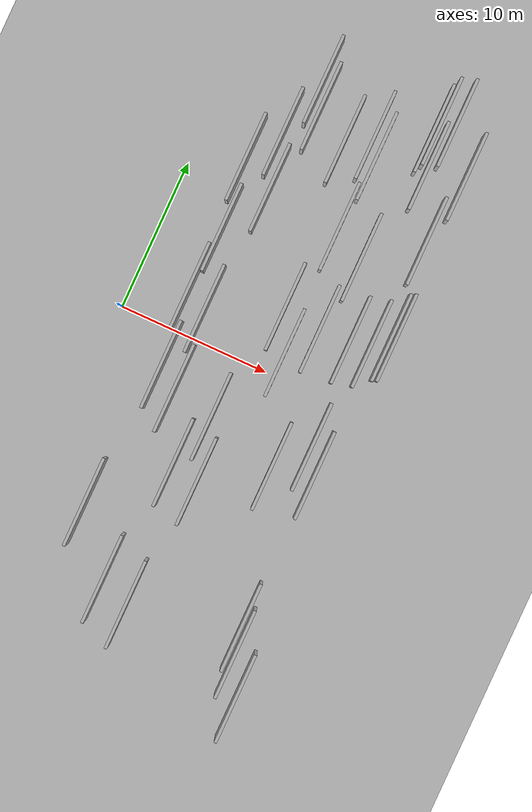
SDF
<?xml version="1.0" encoding="utf-8"?>

<sdf version="1.6">

   <world name="default">

      <gui fullscreen="0">

         <camera name="user_camera">

            <pose>-15 0 4.57585 0 0 0</pose>

            <view_controller>orbit</view_controller>

         </camera>

      </gui>

      <scene>

         <sky>

           <clouds>

             <speed>12</speed>

           </clouds>

         </sky>

         <ambient>0.4 0.4 0.4 1</ambient>

         <background>0.7 0.7 0.7 1</background>

         <shadows>1</shadows>

      </scene>

      <gravity>0 0 -9.8066</gravity>

      <magnetic_field>6e-06 2.3e-05 -4.2e-05</magnetic_field>

      <physics default="0" name="default_physics" type="ode">

         <ode>

            <solver>

               <type>quick</type>

               <iters>10</iters>

               <sor>1.0</sor>

               <use_dynamic_moi_rescaling>0</use_dynamic_moi_rescaling>

            </solver>

            <constraints>

               <cfm>0</cfm>

               <erp>0.2</erp>

               <contact_max_correcting_vel>100</contact_max_correcting_vel>

               <contact_surface_layer>0.001</contact_surface_layer>

            </constraints>

         </ode>

         <max_step_size>0.004</max_step_size>

         <real_time_factor>1</real_time_factor>

         <real_time_update_rate>250</real_time_update_rate>

      </physics>

      <light name="sun" type="directional">

         <cast_shadows>1</cast_shadows>

         <pose>0 0 10 0 0 0</pose>

         <diffuse>0.8 0.8 0.8 1</diffuse>

         <specular>0.2 0.2 0.2 1</specular>

         <attenuation>

            <range>1000</range>

            <constant>0.9</constant>

            <linear>0.01</linear>

            <quadratic>0.001</quadratic>

         </attenuation>

         <direction>-0.5 0.1 -0.9</direction>

      </light>

      <include>

         <name>ground_plane_1</name>

         <uri>model://HANNAS_ground_plane</uri>

         <pose>0 0 0  0 0 0</pose>

      </include>

      <include>

         <name>ground_plane_2</name>

         <uri>model://HANNAS_ground_plane</uri>

         <pose>100 0 0  0 0 0</pose>

      </include>

      <model name="HANNAS_wall_1">

         <static>1</static>

         <pose frame="">12.8347 -5.1475 0.0 0.000000 0.000000 1.570796</pose>

         <link name="link">

            <pose frame="">0 0 3.00 0 0 0</pose>

            <collision name="collision">

               <geometry>

                  <box>

                     <size>6.00 0.2 6.00</size>

                  </box>

               </geometry>

               <max_contacts>10</max_contacts>

               <surface>

                  <contact>

                     <ode/>

                  </contact>

                  <bounce/>

                  <friction>

                     <torsional>

                        <ode/>

                     </torsional>

                     <ode/>

                  </friction>

               </surface>

            </collision>

            <visual name="visual">

               <cast_shadows>0</cast_shadows>

               <geometry>

                  <box>

                     <size>6.00 0.2 6.00</size>

                  </box>

               </geometry>

               <material>

                  <script>

                     <uri>model://HANNAS_wall/materials/scripts</uri>

                     <uri>model://HANNAS_wall/materials/textures</uri>

                     <name>vrc/HANNAS_wall</name>

                  </script>

               </material>

            </visual>

            <self_collide>0</self_collide>

            <enable_wind>0</enable_wind>

            <kinematic>0</kinematic>

         </link>

      </model>

      <model name="HANNAS_wall_2">

         <static>1</static>

         <pose frame="">3.8975 -2.2619 0.0 0.000000 0.000000 1.570796</pose>

         <link name="link">

            <pose frame="">0 0 3.00 0 0 0</pose>

            <collision name="collision">

               <geometry>

                  <box>

                     <size>6.00 0.2 6.00</size>

                  </box>

               </geometry>

               <max_contacts>10</max_contacts>

               <surface>

                  <contact>

                     <ode/>

                  </contact>

                  <bounce/>

                  <friction>

                     <torsional>

                        <ode/>

                     </torsional>

                     <ode/>

                  </friction>

               </surface>

            </collision>

            <visual name="visual">

               <cast_shadows>0</cast_shadows>

               <geometry>

                  <box>

                     <size>6.00 0.2 6.00</size>

                  </box>

               </geometry>

               <material>

                  <script>

                     <uri>model://HANNAS_wall/materials/scripts</uri>

                     <uri>model://HANNAS_wall/materials/textures</uri>

                     <name>vrc/HANNAS_wall</name>

                  </script>

               </material>

            </visual>

            <self_collide>0</self_collide>

            <enable_wind>0</enable_wind>

            <kinematic>0</kinematic>

         </link>

      </model>

      <model name="HANNAS_wall_3">

         <static>1</static>

         <pose frame="">10.6018 1.6065 0.0 0.000000 0.000000 1.570796</pose>

         <link name="link">

            <pose frame="">0 0 3.00 0 0 0</pose>

            <collision name="collision">

               <geometry>

                  <box>

                     <size>6.00 0.2 6.00</size>

                  </box>

               </geometry>

               <max_contacts>10</max_contacts>

               <surface>

                  <contact>

                     <ode/>

                  </contact>

                  <bounce/>

                  <friction>

                     <torsional>

                        <ode/>

                     </torsional>

                     <ode/>

                  </friction>

               </surface>

            </collision>

            <visual name="visual">

               <cast_shadows>0</cast_shadows>

               <geometry>

                  <box>

                     <size>6.00 0.2 6.00</size>

                  </box>

               </geometry>

               <material>

                  <script>

                     <uri>model://HANNAS_wall/materials/scripts</uri>

                     <uri>model://HANNAS_wall/materials/textures</uri>

                     <name>vrc/HANNAS_wall</name>

                  </script>

               </material>

            </visual>

            <self_collide>0</self_collide>

            <enable_wind>0</enable_wind>

            <kinematic>0</kinematic>

         </link>

      </model>

      <model name="HANNAS_wall_4">

         <static>1</static>

         <pose frame="">14.0080 4.0564 0.0 0.000000 0.000000 1.570796</pose>

         <link name="link">

            <pose frame="">0 0 3.00 0 0 0</pose>

            <collision name="collision">

               <geometry>

                  <box>

                     <size>6.00 0.2 6.00</size>

                  </box>

               </geometry>

               <max_contacts>10</max_contacts>

               <surface>

                  <contact>

                     <ode/>

                  </contact>

                  <bounce/>

                  <friction>

                     <torsional>

                        <ode/>

                     </torsional>

                     <ode/>

                  </friction>

               </surface>

            </collision>

            <visual name="visual">

               <cast_shadows>0</cast_shadows>

               <geometry>

                  <box>

                     <size>6.00 0.2 6.00</size>

                  </box>

               </geometry>

               <material>

                  <script>

                     <uri>model://HANNAS_wall/materials/scripts</uri>

                     <uri>model://HANNAS_wall/materials/textures</uri>

                     <name>vrc/HANNAS_wall</name>

                  </script>

               </material>

            </visual>

            <self_collide>0</self_collide>

            <enable_wind>0</enable_wind>

            <kinematic>0</kinematic>

         </link>

      </model>

      <model name="HANNAS_wall_5">

         <static>1</static>

         <pose frame="">16.2582 5.2487 0.0 0.000000 0.000000 1.570796</pose>

         <link name="link">

            <pose frame="">0 0 3.00 0 0 0</pose>

            <collision name="collision">

               <geometry>

                  <box>

                     <size>6.00 0.2 6.00</size>

                  </box>

               </geometry>

               <max_contacts>10</max_contacts>

               <surface>

                  <contact>

                     <ode/>

                  </contact>

                  <bounce/>

                  <friction>

                     <torsional>

                        <ode/>

                     </torsional>

                     <ode/>

                  </friction>

               </surface>

            </collision>

            <visual name="visual">

               <cast_shadows>0</cast_shadows>

               <geometry>

                  <box>

                     <size>6.00 0.2 6.00</size>

                  </box>

               </geometry>

               <material>

                  <script>

                     <uri>model://HANNAS_wall/materials/scripts</uri>

                     <uri>model://HANNAS_wall/materials/textures</uri>

                     <name>vrc/HANNAS_wall</name>

                  </script>

               </material>

            </visual>

            <self_collide>0</self_collide>

            <enable_wind>0</enable_wind>

            <kinematic>0</kinematic>

         </link>

      </model>

      <model name="HANNAS_wall_6">

         <static>1</static>

         <pose frame="">15.3037 -15.0925 0.0 0.000000 0.000000 1.570796</pose>

         <link name="link">

            <pose frame="">0 0 3.00 0 0 0</pose>

            <collision name="collision">

               <geometry>

                  <box>

                     <size>6.00 0.2 6.00</size>

                  </box>

               </geometry>

               <max_contacts>10</max_contacts>

               <surface>

                  <contact>

                     <ode/>

                  </contact>

                  <bounce/>

                  <friction>

                     <torsional>

                        <ode/>

                     </torsional>

                     <ode/>

                  </friction>

               </surface>

            </collision>

            <visual name="visual">

               <cast_shadows>0</cast_shadows>

               <geometry>

                  <box>

                     <size>6.00 0.2 6.00</size>

                  </box>

               </geometry>

               <material>

                  <script>

                     <uri>model://HANNAS_wall/materials/scripts</uri>

                     <uri>model://HANNAS_wall/materials/textures</uri>

                     <name>vrc/HANNAS_wall</name>

                  </script>

               </material>

            </visual>

            <self_collide>0</self_collide>

            <enable_wind>0</enable_wind>

            <kinematic>0</kinematic>

         </link>

      </model>

      <model name="HANNAS_wall_7">

         <static>1</static>

         <pose frame="">14.3897 19.1042 0.0 0.000000 0.000000 1.570796</pose>

         <link name="link">

            <pose frame="">0 0 3.00 0 0 0</pose>

            <collision name="collision">

               <geometry>

                  <box>

                     <size>6.00 0.2 6.00</size>

                  </box>

               </geometry>

               <max_contacts>10</max_contacts>

               <surface>

                  <contact>

                     <ode/>

                  </contact>

                  <bounce/>

                  <friction>

                     <torsional>

                        <ode/>

                     </torsional>

                     <ode/>

                  </friction>

               </surface>

            </collision>

            <visual name="visual">

               <cast_shadows>0</cast_shadows>

               <geometry>

                  <box>

                     <size>6.00 0.2 6.00</size>

                  </box>

               </geometry>

               <material>

                  <script>

                     <uri>model://HANNAS_wall/materials/scripts</uri>

                     <uri>model://HANNAS_wall/materials/textures</uri>

                     <name>vrc/HANNAS_wall</name>

                  </script>

               </material>

            </visual>

            <self_collide>0</self_collide>

            <enable_wind>0</enable_wind>

            <kinematic>0</kinematic>

         </link>

      </model>

      <model name="HANNAS_wall_8">

         <static>1</static>

         <pose frame="">6.2374 16.5095 0.0 0.000000 0.000000 1.570796</pose>

         <link name="link">

            <pose frame="">0 0 3.00 0 0 0</pose>

            <collision name="collision">

               <geometry>

                  <box>

                     <size>6.00 0.2 6.00</size>

                  </box>

               </geometry>

               <max_contacts>10</max_contacts>

               <surface>

                  <contact>

                     <ode/>

                  </contact>

                  <bounce/>

                  <friction>

                     <torsional>

                        <ode/>

                     </torsional>

                     <ode/>

                  </friction>

               </surface>

            </collision>

            <visual name="visual">

               <cast_shadows>0</cast_shadows>

               <geometry>

                  <box>

                     <size>6.00 0.2 6.00</size>

                  </box>

               </geometry>

               <material>

                  <script>

                     <uri>model://HANNAS_wall/materials/scripts</uri>

                     <uri>model://HANNAS_wall/materials/textures</uri>

                     <name>vrc/HANNAS_wall</name>

                  </script>

               </material>

            </visual>

            <self_collide>0</self_collide>

            <enable_wind>0</enable_wind>

            <kinematic>0</kinematic>

         </link>

      </model>

      <model name="HANNAS_wall_9">

         <static>1</static>

         <pose frame="">12.4691 9.0026 0.0 0.000000 0.000000 1.570796</pose>

         <link name="link">

            <pose frame="">0 0 3.00 0 0 0</pose>

            <collision name="collision">

               <geometry>

                  <box>

                     <size>6.00 0.2 6.00</size>

                  </box>

               </geometry>

               <max_contacts>10</max_contacts>

               <surface>

                  <contact>

                     <ode/>

                  </contact>

                  <bounce/>

                  <friction>

                     <torsional>

                        <ode/>

                     </torsional>

                     <ode/>

                  </friction>

               </surface>

            </collision>

            <visual name="visual">

               <cast_shadows>0</cast_shadows>

               <geometry>

                  <box>

                     <size>6.00 0.2 6.00</size>

                  </box>

               </geometry>

               <material>

                  <script>

                     <uri>model://HANNAS_wall/materials/scripts</uri>

                     <uri>model://HANNAS_wall/materials/textures</uri>

                     <name>vrc/HANNAS_wall</name>

                  </script>

               </material>

            </visual>

            <self_collide>0</self_collide>

            <enable_wind>0</enable_wind>

            <kinematic>0</kinematic>

         </link>

      </model>

      <model name="HANNAS_wall_10">

         <static>1</static>

         <pose frame="">10.4148 10.1856 0.0 0.000000 0.000000 1.570796</pose>

         <link name="link">

            <pose frame="">0 0 3.00 0 0 0</pose>

            <collision name="collision">

               <geometry>

                  <box>

                     <size>6.00 0.2 6.00</size>

                  </box>

               </geometry>

               <max_contacts>10</max_contacts>

               <surface>

                  <contact>

                     <ode/>

                  </contact>

                  <bounce/>

                  <friction>

                     <torsional>

                        <ode/>

                     </torsional>

                     <ode/>

                  </friction>

               </surface>

            </collision>

            <visual name="visual">

               <cast_shadows>0</cast_shadows>

               <geometry>

                  <box>

                     <size>6.00 0.2 6.00</size>

                  </box>

               </geometry>

               <material>

                  <script>

                     <uri>model://HANNAS_wall/materials/scripts</uri>

                     <uri>model://HANNAS_wall/materials/textures</uri>

                     <name>vrc/HANNAS_wall</name>

                  </script>

               </material>

            </visual>

            <self_collide>0</self_collide>

            <enable_wind>0</enable_wind>

            <kinematic>0</kinematic>

         </link>

      </model>

      <model name="HANNAS_wall_11">

         <static>1</static>

         <pose frame="">10.0498 16.2816 0.0 0.000000 0.000000 1.570796</pose>

         <link name="link">

            <pose frame="">0 0 3.00 0 0 0</pose>

            <collision name="collision">

               <geometry>

                  <box>

                     <size>6.00 0.2 6.00</size>

                  </box>

               </geometry>

               <max_contacts>10</max_contacts>

               <surface>

                  <contact>

                     <ode/>

                  </contact>

                  <bounce/>

                  <friction>

                     <torsional>

                        <ode/>

                     </torsional>

                     <ode/>

                  </friction>

               </surface>

            </collision>

            <visual name="visual">

               <cast_shadows>0</cast_shadows>

               <geometry>

                  <box>

                     <size>6.00 0.2 6.00</size>

                  </box>

               </geometry>

               <material>

                  <script>

                     <uri>model://HANNAS_wall/materials/scripts</uri>

                     <uri>model://HANNAS_wall/materials/textures</uri>

                     <name>vrc/HANNAS_wall</name>

                  </script>

               </material>

            </visual>

            <self_collide>0</self_collide>

            <enable_wind>0</enable_wind>

            <kinematic>0</kinematic>

         </link>

      </model>

      <model name="HANNAS_wall_12">

         <static>1</static>

         <pose frame="">4.7305 14.0890 0.0 0.000000 0.000000 1.570796</pose>

         <link name="link">

            <pose frame="">0 0 3.00 0 0 0</pose>

            <collision name="collision">

               <geometry>

                  <box>

                     <size>6.00 0.2 6.00</size>

                  </box>

               </geometry>

               <max_contacts>10</max_contacts>

               <surface>

                  <contact>

                     <ode/>

                  </contact>

                  <bounce/>

                  <friction>

                     <torsional>

                        <ode/>

                     </torsional>

                     <ode/>

                  </friction>

               </surface>

            </collision>

            <visual name="visual">

               <cast_shadows>0</cast_shadows>

               <geometry>

                  <box>

                     <size>6.00 0.2 6.00</size>

                  </box>

               </geometry>

               <material>

                  <script>

                     <uri>model://HANNAS_wall/materials/scripts</uri>

                     <uri>model://HANNAS_wall/materials/textures</uri>

                     <name>vrc/HANNAS_wall</name>

                  </script>

               </material>

            </visual>

            <self_collide>0</self_collide>

            <enable_wind>0</enable_wind>

            <kinematic>0</kinematic>

         </link>

      </model>

      <model name="HANNAS_wall_13">

         <static>1</static>

         <pose frame="">5.4506 10.5666 0.0 0.000000 0.000000 1.570796</pose>

         <link name="link">

            <pose frame="">0 0 3.00 0 0 0</pose>

            <collision name="collision">

               <geometry>

                  <box>

                     <size>6.00 0.2 6.00</size>

                  </box>

               </geometry>

               <max_contacts>10</max_contacts>

               <surface>

                  <contact>

                     <ode/>

                  </contact>

                  <bounce/>

                  <friction>

                     <torsional>

                        <ode/>

                     </torsional>

                     <ode/>

                  </friction>

               </surface>

            </collision>

            <visual name="visual">

               <cast_shadows>0</cast_shadows>

               <geometry>

                  <box>

                     <size>6.00 0.2 6.00</size>

                  </box>

               </geometry>

               <material>

                  <script>

                     <uri>model://HANNAS_wall/materials/scripts</uri>

                     <uri>model://HANNAS_wall/materials/textures</uri>

                     <name>vrc/HANNAS_wall</name>

                  </script>

               </material>

            </visual>

            <self_collide>0</self_collide>

            <enable_wind>0</enable_wind>

            <kinematic>0</kinematic>

         </link>

      </model>

      <model name="HANNAS_wall_14">

         <static>1</static>

         <pose frame="">9.4307 4.2425 0.0 0.000000 0.000000 1.570796</pose>

         <link name="link">

            <pose frame="">0 0 3.00 0 0 0</pose>

            <collision name="collision">

               <geometry>

                  <box>

                     <size>6.00 0.2 6.00</size>

                  </box>

               </geometry>

               <max_contacts>10</max_contacts>

               <surface>

                  <contact>

                     <ode/>

                  </contact>

                  <bounce/>

                  <friction>

                     <torsional>

                        <ode/>

                     </torsional>

                     <ode/>

                  </friction>

               </surface>

            </collision>

            <visual name="visual">

               <cast_shadows>0</cast_shadows>

               <geometry>

                  <box>

                     <size>6.00 0.2 6.00</size>

                  </box>

               </geometry>

               <material>

                  <script>

                     <uri>model://HANNAS_wall/materials/scripts</uri>

                     <uri>model://HANNAS_wall/materials/textures</uri>

                     <name>vrc/HANNAS_wall</name>

                  </script>

               </material>

            </visual>

            <self_collide>0</self_collide>

            <enable_wind>0</enable_wind>

            <kinematic>0</kinematic>

         </link>

      </model>

      <model name="HANNAS_wall_15">

         <static>1</static>

         <pose frame="">8.0966 -3.9222 0.0 0.000000 0.000000 1.570796</pose>

         <link name="link">

            <pose frame="">0 0 3.00 0 0 0</pose>

            <collision name="collision">

               <geometry>

                  <box>

                     <size>6.00 0.2 6.00</size>

                  </box>

               </geometry>

               <max_contacts>10</max_contacts>

               <surface>

                  <contact>

                     <ode/>

                  </contact>

                  <bounce/>

                  <friction>

                     <torsional>

                        <ode/>

                     </torsional>

                     <ode/>

                  </friction>

               </surface>

            </collision>

            <visual name="visual">

               <cast_shadows>0</cast_shadows>

               <geometry>

                  <box>

                     <size>6.00 0.2 6.00</size>

                  </box>

               </geometry>

               <material>

                  <script>

                     <uri>model://HANNAS_wall/materials/scripts</uri>

                     <uri>model://HANNAS_wall/materials/textures</uri>

                     <name>vrc/HANNAS_wall</name>

                  </script>

               </material>

            </visual>

            <self_collide>0</self_collide>

            <enable_wind>0</enable_wind>

            <kinematic>0</kinematic>

         </link>

      </model>

      <model name="HANNAS_wall_16">

         <static>1</static>

         <pose frame="">13.2210 18.2051 0.0 0.000000 0.000000 1.570796</pose>

         <link name="link">

            <pose frame="">0 0 3.00 0 0 0</pose>

            <collision name="collision">

               <geometry>

                  <box>

                     <size>6.00 0.2 6.00</size>

                  </box>

               </geometry>

               <max_contacts>10</max_contacts>

               <surface>

                  <contact>

                     <ode/>

                  </contact>

                  <bounce/>

                  <friction>

                     <torsional>

                        <ode/>

                     </torsional>

                     <ode/>

                  </friction>

               </surface>

            </collision>

            <visual name="visual">

               <cast_shadows>0</cast_shadows>

               <geometry>

                  <box>

                     <size>6.00 0.2 6.00</size>

                  </box>

               </geometry>

               <material>

                  <script>

                     <uri>model://HANNAS_wall/materials/scripts</uri>

                     <uri>model://HANNAS_wall/materials/textures</uri>

                     <name>vrc/HANNAS_wall</name>

                  </script>

               </material>

            </visual>

            <self_collide>0</self_collide>

            <enable_wind>0</enable_wind>

            <kinematic>0</kinematic>

         </link>

      </model>

      <model name="HANNAS_wall_17">

         <static>1</static>

         <pose frame="">15.3032 4.3893 0.0 0.000000 0.000000 1.570796</pose>

         <link name="link">

            <pose frame="">0 0 3.00 0 0 0</pose>

            <collision name="collision">

               <geometry>

                  <box>

                     <size>6.00 0.2 6.00</size>

                  </box>

               </geometry>

               <max_contacts>10</max_contacts>

               <surface>

                  <contact>

                     <ode/>

                  </contact>

                  <bounce/>

                  <friction>

                     <torsional>

                        <ode/>

                     </torsional>

                     <ode/>

                  </friction>

               </surface>

            </collision>

            <visual name="visual">

               <cast_shadows>0</cast_shadows>

               <geometry>

                  <box>

                     <size>6.00 0.2 6.00</size>

                  </box>

               </geometry>

               <material>

                  <script>

                     <uri>model://HANNAS_wall/materials/scripts</uri>

                     <uri>model://HANNAS_wall/materials/textures</uri>

                     <name>vrc/HANNAS_wall</name>

                  </script>

               </material>

            </visual>

            <self_collide>0</self_collide>

            <enable_wind>0</enable_wind>

            <kinematic>0</kinematic>

         </link>

      </model>

      <model name="HANNAS_wall_18">

         <static>1</static>

         <pose frame="">16.5487 5.3655 0.0 0.000000 0.000000 1.570796</pose>

         <link name="link">

            <pose frame="">0 0 3.00 0 0 0</pose>

            <collision name="collision">

               <geometry>

                  <box>

                     <size>6.00 0.2 6.00</size>

                  </box>

               </geometry>

               <max_contacts>10</max_contacts>

               <surface>

                  <contact>

                     <ode/>

                  </contact>

                  <bounce/>

                  <friction>

                     <torsional>

                        <ode/>

                     </torsional>

                     <ode/>

                  </friction>

               </surface>

            </collision>

            <visual name="visual">

               <cast_shadows>0</cast_shadows>

               <geometry>

                  <box>

                     <size>6.00 0.2 6.00</size>

                  </box>

               </geometry>

               <material>

                  <script>

                     <uri>model://HANNAS_wall/materials/scripts</uri>

                     <uri>model://HANNAS_wall/materials/textures</uri>

                     <name>vrc/HANNAS_wall</name>

                  </script>

               </material>

            </visual>

            <self_collide>0</self_collide>

            <enable_wind>0</enable_wind>

            <kinematic>0</kinematic>

         </link>

      </model>

      <model name="HANNAS_wall_19">

         <static>1</static>

         <pose frame="">13.8817 15.9402 0.0 0.000000 0.000000 1.570796</pose>

         <link name="link">

            <pose frame="">0 0 3.00 0 0 0</pose>

            <collision name="collision">

               <geometry>

                  <box>

                     <size>6.00 0.2 6.00</size>

                  </box>

               </geometry>

               <max_contacts>10</max_contacts>

               <surface>

                  <contact>

                     <ode/>

                  </contact>

                  <bounce/>

                  <friction>

                     <torsional>

                        <ode/>

                     </torsional>

                     <ode/>

                  </friction>

               </surface>

            </collision>

            <visual name="visual">

               <cast_shadows>0</cast_shadows>

               <geometry>

                  <box>

                     <size>6.00 0.2 6.00</size>

                  </box>

               </geometry>

               <material>

                  <script>

                     <uri>model://HANNAS_wall/materials/scripts</uri>

                     <uri>model://HANNAS_wall/materials/textures</uri>

                     <name>vrc/HANNAS_wall</name>

                  </script>

               </material>

            </visual>

            <self_collide>0</self_collide>

            <enable_wind>0</enable_wind>

            <kinematic>0</kinematic>

         </link>

      </model>

      <model name="HANNAS_wall_20">

         <static>1</static>

         <pose frame="">6.1719 -15.9493 0.0 0.000000 0.000000 1.570796</pose>

         <link name="link">

            <pose frame="">0 0 3.00 0 0 0</pose>

            <collision name="collision">

               <geometry>

                  <box>

                     <size>6.00 0.2 6.00</size>

                  </box>

               </geometry>

               <max_contacts>10</max_contacts>

               <surface>

                  <contact>

                     <ode/>

                  </contact>

                  <bounce/>

                  <friction>

                     <torsional>

                        <ode/>

                     </torsional>

                     <ode/>

                  </friction>

               </surface>

            </collision>

            <visual name="visual">

               <cast_shadows>0</cast_shadows>

               <geometry>

                  <box>

                     <size>6.00 0.2 6.00</size>

                  </box>

               </geometry>

               <material>

                  <script>

                     <uri>model://HANNAS_wall/materials/scripts</uri>

                     <uri>model://HANNAS_wall/materials/textures</uri>

                     <name>vrc/HANNAS_wall</name>

                  </script>

               </material>

            </visual>

            <self_collide>0</self_collide>

            <enable_wind>0</enable_wind>

            <kinematic>0</kinematic>

         </link>

      </model>

      <model name="HANNAS_wall_21">

         <static>1</static>

         <pose frame="">14.5956 -3.0212 0.0 0.000000 0.000000 1.570796</pose>

         <link name="link">

            <pose frame="">0 0 3.00 0 0 0</pose>

            <collision name="collision">

               <geometry>

                  <box>

                     <size>6.00 0.2 6.00</size>

                  </box>

               </geometry>

               <max_contacts>10</max_contacts>

               <surface>

                  <contact>

                     <ode/>

                  </contact>

                  <bounce/>

                  <friction>

                     <torsional>

                        <ode/>

                     </torsional>

                     <ode/>

                  </friction>

               </surface>

            </collision>

            <visual name="visual">

               <cast_shadows>0</cast_shadows>

               <geometry>

                  <box>

                     <size>6.00 0.2 6.00</size>

                  </box>

               </geometry>

               <material>

                  <script>

                     <uri>model://HANNAS_wall/materials/scripts</uri>

                     <uri>model://HANNAS_wall/materials/textures</uri>

                     <name>vrc/HANNAS_wall</name>

                  </script>

               </material>

            </visual>

            <self_collide>0</self_collide>

            <enable_wind>0</enable_wind>

            <kinematic>0</kinematic>

         </link>

      </model>

      <model name="HANNAS_wall_22">

         <static>1</static>

         <pose frame="">7.1515 -7.5120 0.0 0.000000 0.000000 1.570796</pose>

         <link name="link">

            <pose frame="">0 0 3.00 0 0 0</pose>

            <collision name="collision">

               <geometry>

                  <box>

                     <size>6.00 0.2 6.00</size>

                  </box>

               </geometry>

               <max_contacts>10</max_contacts>

               <surface>

                  <contact>

                     <ode/>

                  </contact>

                  <bounce/>

                  <friction>

                     <torsional>

                        <ode/>

                     </torsional>

                     <ode/>

                  </friction>

               </surface>

            </collision>

            <visual name="visual">

               <cast_shadows>0</cast_shadows>

               <geometry>

                  <box>

                     <size>6.00 0.2 6.00</size>

                  </box>

               </geometry>

               <material>

                  <script>

                     <uri>model://HANNAS_wall/materials/scripts</uri>

                     <uri>model://HANNAS_wall/materials/textures</uri>

                     <name>vrc/HANNAS_wall</name>

                  </script>

               </material>

            </visual>

            <self_collide>0</self_collide>

            <enable_wind>0</enable_wind>

            <kinematic>0</kinematic>

         </link>

      </model>

      <model name="HANNAS_wall_23">

         <static>1</static>

         <pose frame="">11.9656 3.8660 0.0 0.000000 0.000000 1.570796</pose>

         <link name="link">

            <pose frame="">0 0 3.00 0 0 0</pose>

            <collision name="collision">

               <geometry>

                  <box>

                     <size>6.00 0.2 6.00</size>

                  </box>

               </geometry>

               <max_contacts>10</max_contacts>

               <surface>

                  <contact>

                     <ode/>

                  </contact>

                  <bounce/>

                  <friction>

                     <torsional>

                        <ode/>

                     </torsional>

                     <ode/>

                  </friction>

               </surface>

            </collision>

            <visual name="visual">

               <cast_shadows>0</cast_shadows>

               <geometry>

                  <box>

                     <size>6.00 0.2 6.00</size>

                  </box>

               </geometry>

               <material>

                  <script>

                     <uri>model://HANNAS_wall/materials/scripts</uri>

                     <uri>model://HANNAS_wall/materials/textures</uri>

                     <name>vrc/HANNAS_wall</name>

                  </script>

               </material>

            </visual>

            <self_collide>0</self_collide>

            <enable_wind>0</enable_wind>

            <kinematic>0</kinematic>

         </link>

      </model>

      <model name="HANNAS_wall_24">

         <static>1</static>

         <pose frame="">5.2564 -3.2837 0.0 0.000000 0.000000 1.570796</pose>

         <link name="link">

            <pose frame="">0 0 3.00 0 0 0</pose>

            <collision name="collision">

               <geometry>

                  <box>

                     <size>6.00 0.2 6.00</size>

                  </box>

               </geometry>

               <max_contacts>10</max_contacts>

               <surface>

                  <contact>

                     <ode/>

                  </contact>

                  <bounce/>

                  <friction>

                     <torsional>

                        <ode/>

                     </torsional>

                     <ode/>

                  </friction>

               </surface>

            </collision>

            <visual name="visual">

               <cast_shadows>0</cast_shadows>

               <geometry>

                  <box>

                     <size>6.00 0.2 6.00</size>

                  </box>

               </geometry>

               <material>

                  <script>

                     <uri>model://HANNAS_wall/materials/scripts</uri>

                     <uri>model://HANNAS_wall/materials/textures</uri>

                     <name>vrc/HANNAS_wall</name>

                  </script>

               </material>

            </visual>

            <self_collide>0</self_collide>

            <enable_wind>0</enable_wind>

            <kinematic>0</kinematic>

         </link>

      </model>

      <model name="HANNAS_wall_25">

         <static>1</static>

         <pose frame="">8.1668 -16.7894 0.0 0.000000 0.000000 1.570796</pose>

         <link name="link">

            <pose frame="">0 0 3.00 0 0 0</pose>

            <collision name="collision">

               <geometry>

                  <box>

                     <size>6.00 0.2 6.00</size>

                  </box>

               </geometry>

               <max_contacts>10</max_contacts>

               <surface>

                  <contact>

                     <ode/>

                  </contact>

                  <bounce/>

                  <friction>

                     <torsional>

                        <ode/>

                     </torsional>

                     <ode/>

                  </friction>

               </surface>

            </collision>

            <visual name="visual">

               <cast_shadows>0</cast_shadows>

               <geometry>

                  <box>

                     <size>6.00 0.2 6.00</size>

                  </box>

               </geometry>

               <material>

                  <script>

                     <uri>model://HANNAS_wall/materials/scripts</uri>

                     <uri>model://HANNAS_wall/materials/textures</uri>

                     <name>vrc/HANNAS_wall</name>

                  </script>

               </material>

            </visual>

            <self_collide>0</self_collide>

            <enable_wind>0</enable_wind>

            <kinematic>0</kinematic>

         </link>

      </model>

      <model name="HANNAS_wall_26">

         <static>1</static>

         <pose frame="">15.7303 11.6315 0.0 0.000000 0.000000 1.570796</pose>

         <link name="link">

            <pose frame="">0 0 3.00 0 0 0</pose>

            <collision name="collision">

               <geometry>

                  <box>

                     <size>6.00 0.2 6.00</size>

                  </box>

               </geometry>

               <max_contacts>10</max_contacts>

               <surface>

                  <contact>

                     <ode/>

                  </contact>

                  <bounce/>

                  <friction>

                     <torsional>

                        <ode/>

                     </torsional>

                     <ode/>

                  </friction>

               </surface>

            </collision>

            <visual name="visual">

               <cast_shadows>0</cast_shadows>

               <geometry>

                  <box>

                     <size>6.00 0.2 6.00</size>

                  </box>

               </geometry>

               <material>

                  <script>

                     <uri>model://HANNAS_wall/materials/scripts</uri>

                     <uri>model://HANNAS_wall/materials/textures</uri>

                     <name>vrc/HANNAS_wall</name>

                  </script>

               </material>

            </visual>

            <self_collide>0</self_collide>

            <enable_wind>0</enable_wind>

            <kinematic>0</kinematic>

         </link>

      </model>

      <model name="HANNAS_wall_27">

         <static>1</static>

         <pose frame="">4.8920 2.0136 0.0 0.000000 0.000000 1.570796</pose>

         <link name="link">

            <pose frame="">0 0 3.00 0 0 0</pose>

            <collision name="collision">

               <geometry>

                  <box>

                     <size>6.00 0.2 6.00</size>

                  </box>

               </geometry>

               <max_contacts>10</max_contacts>

               <surface>

                  <contact>

                     <ode/>

                  </contact>

                  <bounce/>

                  <friction>

                     <torsional>

                        <ode/>

                     </torsional>

                     <ode/>

                  </friction>

               </surface>

            </collision>

            <visual name="visual">

               <cast_shadows>0</cast_shadows>

               <geometry>

                  <box>

                     <size>6.00 0.2 6.00</size>

                  </box>

               </geometry>

               <material>

                  <script>

                     <uri>model://HANNAS_wall/materials/scripts</uri>

                     <uri>model://HANNAS_wall/materials/textures</uri>

                     <name>vrc/HANNAS_wall</name>

                  </script>

               </material>

            </visual>

            <self_collide>0</self_collide>

            <enable_wind>0</enable_wind>

            <kinematic>0</kinematic>

         </link>

      </model>

      <model name="HANNAS_wall_28">

         <static>1</static>

         <pose frame="">3.7537 7.0621 0.0 0.000000 0.000000 1.570796</pose>

         <link name="link">

            <pose frame="">0 0 3.00 0 0 0</pose>

            <collision name="collision">

               <geometry>

                  <box>

                     <size>6.00 0.2 6.00</size>

                  </box>

               </geometry>

               <max_contacts>10</max_contacts>

               <surface>

                  <contact>

                     <ode/>

                  </contact>

                  <bounce/>

                  <friction>

                     <torsional>

                        <ode/>

                     </torsional>

                     <ode/>

                  </friction>

               </surface>

            </collision>

            <visual name="visual">

               <cast_shadows>0</cast_shadows>

               <geometry>

                  <box>

                     <size>6.00 0.2 6.00</size>

                  </box>

               </geometry>

               <material>

                  <script>

                     <uri>model://HANNAS_wall/materials/scripts</uri>

                     <uri>model://HANNAS_wall/materials/textures</uri>

                     <name>vrc/HANNAS_wall</name>

                  </script>

               </material>

            </visual>

            <self_collide>0</self_collide>

            <enable_wind>0</enable_wind>

            <kinematic>0</kinematic>

         </link>

      </model>

      <model name="HANNAS_wall_29">

         <static>1</static>

         <pose frame="">10.6884 15.1287 0.0 0.000000 0.000000 1.570796</pose>

         <link name="link">

            <pose frame="">0 0 3.00 0 0 0</pose>

            <collision name="collision">

               <geometry>

                  <box>

                     <size>6.00 0.2 6.00</size>

                  </box>

               </geometry>

               <max_contacts>10</max_contacts>

               <surface>

                  <contact>

                     <ode/>

                  </contact>

                  <bounce/>

                  <friction>

                     <torsional>

                        <ode/>

                     </torsional>

                     <ode/>

                  </friction>

               </surface>

            </collision>

            <visual name="visual">

               <cast_shadows>0</cast_shadows>

               <geometry>

                  <box>

                     <size>6.00 0.2 6.00</size>

                  </box>

               </geometry>

               <material>

                  <script>

                     <uri>model://HANNAS_wall/materials/scripts</uri>

                     <uri>model://HANNAS_wall/materials/textures</uri>

                     <name>vrc/HANNAS_wall</name>

                  </script>

               </material>

            </visual>

            <self_collide>0</self_collide>

            <enable_wind>0</enable_wind>

            <kinematic>0</kinematic>

         </link>

      </model>

      <model name="HANNAS_wall_30">

         <static>1</static>

         <pose frame="">16.8361 -19.2339 0.0 0.000000 0.000000 1.570796</pose>

         <link name="link">

            <pose frame="">0 0 3.00 0 0 0</pose>

            <collision name="collision">

               <geometry>

                  <box>

                     <size>6.00 0.2 6.00</size>

                  </box>

               </geometry>

               <max_contacts>10</max_contacts>

               <surface>

                  <contact>

                     <ode/>

                  </contact>

                  <bounce/>

                  <friction>

                     <torsional>

                        <ode/>

                     </torsional>

                     <ode/>

                  </friction>

               </surface>

            </collision>

            <visual name="visual">

               <cast_shadows>0</cast_shadows>

               <geometry>

                  <box>

                     <size>6.00 0.2 6.00</size>

                  </box>

               </geometry>

               <material>

                  <script>

                     <uri>model://HANNAS_wall/materials/scripts</uri>

                     <uri>model://HANNAS_wall/materials/textures</uri>

                     <name>vrc/HANNAS_wall</name>

                  </script>

               </material>

            </visual>

            <self_collide>0</self_collide>

            <enable_wind>0</enable_wind>

            <kinematic>0</kinematic>

         </link>

      </model>

      <model name="HANNAS_wall_31">

         <static>1</static>

         <pose frame="">13.4694 18.8005 0.0 0.000000 0.000000 1.570796</pose>

         <link name="link">

            <pose frame="">0 0 3.00 0 0 0</pose>

            <collision name="collision">

               <geometry>

                  <box>

                     <size>6.00 0.2 6.00</size>

                  </box>

               </geometry>

               <max_contacts>10</max_contacts>

               <surface>

                  <contact>

                     <ode/>

                  </contact>

                  <bounce/>

                  <friction>

                     <torsional>

                        <ode/>

                     </torsional>

                     <ode/>

                  </friction>

               </surface>

            </collision>

            <visual name="visual">

               <cast_shadows>0</cast_shadows>

               <geometry>

                  <box>

                     <size>6.00 0.2 6.00</size>

                  </box>

               </geometry>

               <material>

                  <script>

                     <uri>model://HANNAS_wall/materials/scripts</uri>

                     <uri>model://HANNAS_wall/materials/textures</uri>

                     <name>vrc/HANNAS_wall</name>

                  </script>

               </material>

            </visual>

            <self_collide>0</self_collide>

            <enable_wind>0</enable_wind>

            <kinematic>0</kinematic>

         </link>

      </model>

      <model name="HANNAS_wall_32">

         <static>1</static>

         <pose frame="">16.3159 16.3068 0.0 0.000000 0.000000 1.570796</pose>

         <link name="link">

            <pose frame="">0 0 3.00 0 0 0</pose>

            <collision name="collision">

               <geometry>

                  <box>

                     <size>6.00 0.2 6.00</size>

                  </box>

               </geometry>

               <max_contacts>10</max_contacts>

               <surface>

                  <contact>

                     <ode/>

                  </contact>

                  <bounce/>

                  <friction>

                     <torsional>

                        <ode/>

                     </torsional>

                     <ode/>

                  </friction>

               </surface>

            </collision>

            <visual name="visual">

               <cast_shadows>0</cast_shadows>

               <geometry>

                  <box>

                     <size>6.00 0.2 6.00</size>

                  </box>

               </geometry>

               <material>

                  <script>

                     <uri>model://HANNAS_wall/materials/scripts</uri>

                     <uri>model://HANNAS_wall/materials/textures</uri>

                     <name>vrc/HANNAS_wall</name>

                  </script>

               </material>

            </visual>

            <self_collide>0</self_collide>

            <enable_wind>0</enable_wind>

            <kinematic>0</kinematic>

         </link>

      </model>

      <model name="HANNAS_wall_33">

         <static>1</static>

         <pose frame="">8.4502 15.2673 0.0 0.000000 0.000000 1.570796</pose>

         <link name="link">

            <pose frame="">0 0 3.00 0 0 0</pose>

            <collision name="collision">

               <geometry>

                  <box>

                     <size>6.00 0.2 6.00</size>

                  </box>

               </geometry>

               <max_contacts>10</max_contacts>

               <surface>

                  <contact>

                     <ode/>

                  </contact>

                  <bounce/>

                  <friction>

                     <torsional>

                        <ode/>

                     </torsional>

                     <ode/>

                  </friction>

               </surface>

            </collision>

            <visual name="visual">

               <cast_shadows>0</cast_shadows>

               <geometry>

                  <box>

                     <size>6.00 0.2 6.00</size>

                  </box>

               </geometry>

               <material>

                  <script>

                     <uri>model://HANNAS_wall/materials/scripts</uri>

                     <uri>model://HANNAS_wall/materials/textures</uri>

                     <name>vrc/HANNAS_wall</name>

                  </script>

               </material>

            </visual>

            <self_collide>0</self_collide>

            <enable_wind>0</enable_wind>

            <kinematic>0</kinematic>

         </link>

      </model>

      <model name="HANNAS_wall_34">

         <static>1</static>

         <pose frame="">15.5058 -4.5600 0.0 0.000000 0.000000 1.570796</pose>

         <link name="link">

            <pose frame="">0 0 3.00 0 0 0</pose>

            <collision name="collision">

               <geometry>

                  <box>

                     <size>6.00 0.2 6.00</size>

                  </box>

               </geometry>

               <max_contacts>10</max_contacts>

               <surface>

                  <contact>

                     <ode/>

                  </contact>

                  <bounce/>

                  <friction>

                     <torsional>

                        <ode/>

                     </torsional>

                     <ode/>

                  </friction>

               </surface>

            </collision>

            <visual name="visual">

               <cast_shadows>0</cast_shadows>

               <geometry>

                  <box>

                     <size>6.00 0.2 6.00</size>

                  </box>

               </geometry>

               <material>

                  <script>

                     <uri>model://HANNAS_wall/materials/scripts</uri>

                     <uri>model://HANNAS_wall/materials/textures</uri>

                     <name>vrc/HANNAS_wall</name>

                  </script>

               </material>

            </visual>

            <self_collide>0</self_collide>

            <enable_wind>0</enable_wind>

            <kinematic>0</kinematic>

         </link>

      </model>

      <model name="HANNAS_wall_35">

         <static>1</static>

         <pose frame="">15.6578 -16.7419 0.0 0.000000 0.000000 1.570796</pose>

         <link name="link">

            <pose frame="">0 0 3.00 0 0 0</pose>

            <collision name="collision">

               <geometry>

                  <box>

                     <size>6.00 0.2 6.00</size>

                  </box>

               </geometry>

               <max_contacts>10</max_contacts>

               <surface>

                  <contact>

                     <ode/>

                  </contact>

                  <bounce/>

                  <friction>

                     <torsional>

                        <ode/>

                     </torsional>

                     <ode/>

                  </friction>

               </surface>

            </collision>

            <visual name="visual">

               <cast_shadows>0</cast_shadows>

               <geometry>

                  <box>

                     <size>6.00 0.2 6.00</size>

                  </box>

               </geometry>

               <material>

                  <script>

                     <uri>model://HANNAS_wall/materials/scripts</uri>

                     <uri>model://HANNAS_wall/materials/textures</uri>

                     <name>vrc/HANNAS_wall</name>

                  </script>

               </material>

            </visual>

            <self_collide>0</self_collide>

            <enable_wind>0</enable_wind>

            <kinematic>0</kinematic>

         </link>

      </model>

      <model name="HANNAS_wall_36">

         <static>1</static>

         <pose frame="">3.4668 2.8964 0.0 0.000000 0.000000 1.570796</pose>

         <link name="link">

            <pose frame="">0 0 3.00 0 0 0</pose>

            <collision name="collision">

               <geometry>

                  <box>

                     <size>6.00 0.2 6.00</size>

                  </box>

               </geometry>

               <max_contacts>10</max_contacts>

               <surface>

                  <contact>

                     <ode/>

                  </contact>

                  <bounce/>

                  <friction>

                     <torsional>

                        <ode/>

                     </torsional>

                     <ode/>

                  </friction>

               </surface>

            </collision>

            <visual name="visual">

               <cast_shadows>0</cast_shadows>

               <geometry>

                  <box>

                     <size>6.00 0.2 6.00</size>

                  </box>

               </geometry>

               <material>

                  <script>

                     <uri>model://HANNAS_wall/materials/scripts</uri>

                     <uri>model://HANNAS_wall/materials/textures</uri>

                     <name>vrc/HANNAS_wall</name>

                  </script>

               </material>

            </visual>

            <self_collide>0</self_collide>

            <enable_wind>0</enable_wind>

            <kinematic>0</kinematic>

         </link>

      </model>

      <model name="HANNAS_wall_37">

         <static>1</static>

         <pose frame="">3.1301 -12.0669 0.0 0.000000 0.000000 1.570796</pose>

         <link name="link">

            <pose frame="">0 0 3.00 0 0 0</pose>

            <collision name="collision">

               <geometry>

                  <box>

                     <size>6.00 0.2 6.00</size>

                  </box>

               </geometry>

               <max_contacts>10</max_contacts>

               <surface>

                  <contact>

                     <ode/>

                  </contact>

                  <bounce/>

                  <friction>

                     <torsional>

                        <ode/>

                     </torsional>

                     <ode/>

                  </friction>

               </surface>

            </collision>

            <visual name="visual">

               <cast_shadows>0</cast_shadows>

               <geometry>

                  <box>

                     <size>6.00 0.2 6.00</size>

                  </box>

               </geometry>

               <material>

                  <script>

                     <uri>model://HANNAS_wall/materials/scripts</uri>

                     <uri>model://HANNAS_wall/materials/textures</uri>

                     <name>vrc/HANNAS_wall</name>

                  </script>

               </material>

            </visual>

            <self_collide>0</self_collide>

            <enable_wind>0</enable_wind>

            <kinematic>0</kinematic>

         </link>

      </model>

      <model name="HANNAS_wall_38">

         <static>1</static>

         <pose frame="">3.2895 11.6909 0.0 0.000000 0.000000 1.570796</pose>

         <link name="link">

            <pose frame="">0 0 3.00 0 0 0</pose>

            <collision name="collision">

               <geometry>

                  <box>

                     <size>6.00 0.2 6.00</size>

                  </box>

               </geometry>

               <max_contacts>10</max_contacts>

               <surface>

                  <contact>

                     <ode/>

                  </contact>

                  <bounce/>

                  <friction>

                     <torsional>

                        <ode/>

                     </torsional>

                     <ode/>

                  </friction>

               </surface>

            </collision>

            <visual name="visual">

               <cast_shadows>0</cast_shadows>

               <geometry>

                  <box>

                     <size>6.00 0.2 6.00</size>

                  </box>

               </geometry>

               <material>

                  <script>

                     <uri>model://HANNAS_wall/materials/scripts</uri>

                     <uri>model://HANNAS_wall/materials/textures</uri>

                     <name>vrc/HANNAS_wall</name>

                  </script>

               </material>

            </visual>

            <self_collide>0</self_collide>

            <enable_wind>0</enable_wind>

            <kinematic>0</kinematic>

         </link>

      </model>

      <model name="HANNAS_wall_39">

         <static>1</static>

         <pose frame="">5.6716 18.0833 0.0 0.000000 0.000000 1.570796</pose>

         <link name="link">

            <pose frame="">0 0 3.00 0 0 0</pose>

            <collision name="collision">

               <geometry>

                  <box>

                     <size>6.00 0.2 6.00</size>

                  </box>

               </geometry>

               <max_contacts>10</max_contacts>

               <surface>

                  <contact>

                     <ode/>

                  </contact>

                  <bounce/>

                  <friction>

                     <torsional>

                        <ode/>

                     </torsional>

                     <ode/>

                  </friction>

               </surface>

            </collision>

            <visual name="visual">

               <cast_shadows>0</cast_shadows>

               <geometry>

                  <box>

                     <size>6.00 0.2 6.00</size>

                  </box>

               </geometry>

               <material>

                  <script>

                     <uri>model://HANNAS_wall/materials/scripts</uri>

                     <uri>model://HANNAS_wall/materials/textures</uri>

                     <name>vrc/HANNAS_wall</name>

                  </script>

               </material>

            </visual>

            <self_collide>0</self_collide>

            <enable_wind>0</enable_wind>

            <kinematic>0</kinematic>

         </link>

      </model>

      <model name="HANNAS_wall_40">

         <static>1</static>

         <pose frame="">8.9647 -7.9913 0.0 0.000000 0.000000 1.570796</pose>

         <link name="link">

            <pose frame="">0 0 3.00 0 0 0</pose>

            <collision name="collision">

               <geometry>

                  <box>

                     <size>6.00 0.2 6.00</size>

                  </box>

               </geometry>

               <max_contacts>10</max_contacts>

               <surface>

                  <contact>

                     <ode/>

                  </contact>

                  <bounce/>

                  <friction>

                     <torsional>

                        <ode/>

                     </torsional>

                     <ode/>

                  </friction>

               </surface>

            </collision>

            <visual name="visual">

               <cast_shadows>0</cast_shadows>

               <geometry>

                  <box>

                     <size>6.00 0.2 6.00</size>

                  </box>

               </geometry>

               <material>

                  <script>

                     <uri>model://HANNAS_wall/materials/scripts</uri>

                     <uri>model://HANNAS_wall/materials/textures</uri>

                     <name>vrc/HANNAS_wall</name>

                  </script>

               </material>

            </visual>

            <self_collide>0</self_collide>

            <enable_wind>0</enable_wind>

            <kinematic>0</kinematic>

         </link>

      </model>

   </world>

</sdf>
